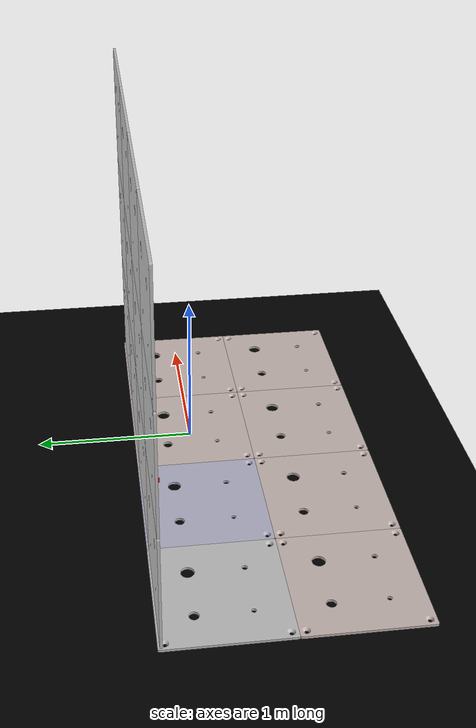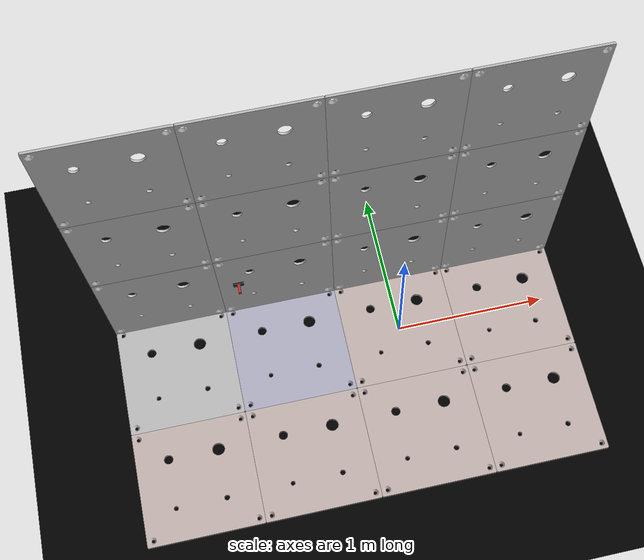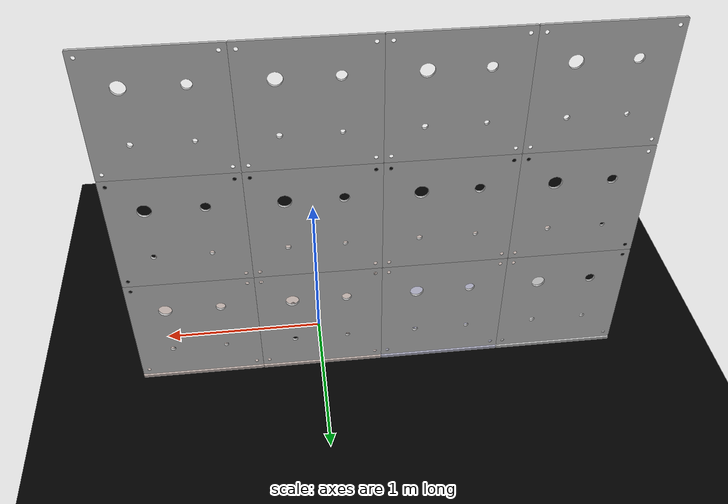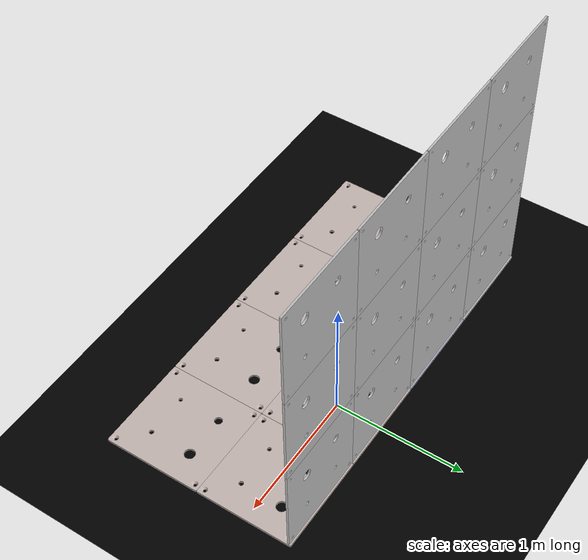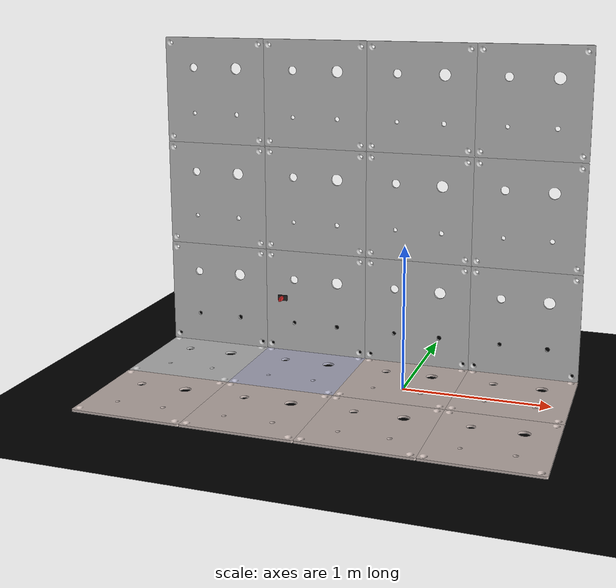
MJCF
<mujoco model="fusion_preview_all_parts">

  <compiler angle="degree" coordinate="local" meshdir="."/>
  <option gravity="0 0 -9.81" timestep="0.002"/>

  <visual>
    <headlight diffuse="0.8 0.8 0.8" ambient="0.3 0.3 0.3" specular="0.2 0.2 0.2"/>
    <rgba haze="0.15 0.25 0.35 1"/>
  </visual>

  <asset>
    <!--           MESHES          -->

    <!-- Comment out any mesh you do not want to load -->

    <mesh name="switch_tile_mesh"     file="..\meshes\Switch_tile.stl"    scale="0.005 0.005 0.005"/>
    <mesh name="led_tile_mesh"        file="..\meshes\LED_tile.stl"       scale="0.005 0.005 0.005"/>
    <mesh name="connector_tile_mesh"  file="..\meshes\Connector_tile.stl" scale="0.005 0.005 0.005"/>
    <mesh name="normal_tile_mesh"  file="..\meshes\tile.stl" scale="0.005 0.005 0.005"/>

    <!-- Note: this filename includes a space before .stl -->
    <mesh name="part_300mm_mesh"      file="..\meshes\300mm.stl"         scale="0.005 0.005 0.005"/>
    <mesh name="part_450mm_mesh"      file="..\meshes\450mm.stl"          scale="0.005 0.005 0.005"/>
    <mesh name="part_600mm_mesh"      file="..\meshes\600mm.stl"          scale="0.005 0.005 0.005"/>
  </asset>

  <default>
    <geom type="mesh"
          contype="0"
          conaffinity="0"
          rgba="0.72 0.72 0.72 1"/>

    <default class="switch_visual">
      <geom type="box" contype="1" conaffinity="1" friction="1 0.1 0.1"/>
    </default>
  </default>

  <worldbody>
    <!--      LIGHTS / FLOOR       -->

    <light name="top_light_1" pos="0 0 3"/>
    <light name="top_light_2" pos="2 0 3"/>
    <light name="top_light_3" pos="-2 0 3"/>

    <geom name="floor" type="plane" size="5 5 0.1" rgba="0 0 0 1"/>

    <!--         CAMERAS           -->

    <!-- Wide camera for all parts -->
    <camera name="overview" pos="0 2.8 1.6" xyaxes="1 0 0 0 0.5 1"/>

    <!-- Alternative side camera -->
    <camera name="side" pos="3 0 1.2" xyaxes="0 1 0 -0.3 0 1"/>

    <!--        MESH BODIES        -->

    <!--
      Each body is separated and placed side by side.
      You can comment out any whole body block whenever you want.
    -->

   <!-- Ground first tile series -->
    <body name="switch_tile_body" pos="-1.50 0 0.05">
      <geom name="switch_tile_geom" mesh="switch_tile_mesh" rgba="0.75 0.75 0.75 1"/>
    </body>

    <body name="led_tile_body" pos="-0.75 0 0.05">
      <geom name="led_tile_geom" mesh="switch_tile_mesh" rgba="0.70 0.70 0.78 1"/>
    </body>

    <body name="connector_tile_body" pos="0.00 0 0.05">
      <geom name="connector_tile_geom" mesh="switch_tile_mesh" rgba="0.78 0.72 0.70 1"/>
    </body>

    <body name="connector_tile_body2" pos="0.75 0 0.05">
      <geom name="connector_tile_geom2" mesh="switch_tile_mesh" rgba="0.78 0.72 0.70 1"/>
    </body>

  <!-- Ground second tile series -->
    <body name="connector_tile_body3" pos="-1.50 -0.75 0.05">
      <geom name="connector_tile_geom3" mesh="switch_tile_mesh" rgba="0.78 0.72 0.70 1"/>
    </body>

    <body name="connector_tile_body4" pos="-0.75 -0.75 0.05">
      <geom name="connector_tile_geom4" mesh="switch_tile_mesh" rgba="0.78 0.72 0.70 1"/>
    </body>

    <body name="connector_tile_body5" pos="0.00 -0.75 0.05">
      <geom name="connector_tile_geom5" mesh="switch_tile_mesh" rgba="0.78 0.72 0.70 1"/>
    </body>

    <body name="connector_tile_body6" pos="0.75 -0.75 0.05">
      <geom name="connector_tile_geom6" mesh="switch_tile_mesh" rgba="0.78 0.72 0.70 1"/>
    </body>

  <!-- Upper first tile series -->
    <body name="switch_tile_body2" pos="-1.50 0.35 0.43" euler="90 0 0">
      <geom name="switch_tile_geom2" mesh="switch_tile_mesh" rgba="0.75 0.75 0.75 1"/>
    </body>

    <body name="switch_tile_body3" pos="-0.75 0.35 0.43" euler="90 0 0">
      <geom name="switch_tile_geom3" mesh="switch_tile_mesh" rgba="0.75 0.75 0.75 1"/>
    </body>

    <body name="switch_tile_body4" pos="0 0.35 0.43" euler="90 0 0">
      <geom name="switch_tile_geom4" mesh="switch_tile_mesh" rgba="0.75 0.75 0.75 1"/>

      <!-- Simple toggle switch mounted on this panel -->
      <body name="panel_switch_mount" pos="-1 0.02 0.00">
        <geom name="panel_switch_base" class="switch_visual" size="0.035 0.02 0.008" pos="0 0 0" rgba="0.15 0.15 0.15 1"/>

        <body name="panel_switch_toggle" pos="0 0 0.008">
          <joint name="panel_switch_hinge" type="hinge" axis="1 0 0" range="-0.6 0.6" damping="0.4" frictionloss="0.05"/>
          <geom name="panel_switch_lever" class="switch_visual" type="box" size="0.008 0.012 0.03" pos="0 0 0.03" rgba="0.85 0.15 0.15 1"/>
        </body>
      </body>
    </body>

    <body name="switch_tile_body5" pos="0.75 0.35 0.43" euler="90 0 0">
      <geom name="switch_tile_geom5" mesh="switch_tile_mesh" rgba="0.75 0.75 0.75 1"/>
    </body>

  <!-- Upper second tile series -->
    <body name="switch_tile_body6" pos="-1.50 0.35 1.18" euler="90 0 0">
      <geom name="switch_tile_geom6" mesh="switch_tile_mesh" rgba="0.75 0.75 0.75 1"/>
    </body>

    <body name="switch_tile_body7" pos="-0.75 0.35 1.18" euler="90 0 0">
      <geom name="switch_tile_geom7" mesh="switch_tile_mesh" rgba="0.75 0.75 0.75 1"/>
    </body>

    <body name="switch_tile_body8" pos="0 0.35 1.18" euler="90 0 0">
      <geom name="switch_tile_geom8" mesh="switch_tile_mesh" rgba="0.75 0.75 0.75 1"/>
    </body>

    <body name="switch_tile_body9" pos="0.75 0.35 1.18" euler="90 0 0">
      <geom name="switch_tile_geom9" mesh="switch_tile_mesh" rgba="0.75 0.75 0.75 1"/>
    </body>

  <!-- Upper third tile series -->
    <body name="switch_tile_body10" pos="-1.50 0.35 1.93" euler="90 0 0">
      <geom name="switch_tile_geom10" mesh="switch_tile_mesh" rgba="0.75 0.75 0.75 1"/>
    </body>

    <body name="switch_tile_body11" pos="-0.75 0.35 1.93" euler="90 0 0">
      <geom name="switch_tile_geom11" mesh="switch_tile_mesh" rgba="0.75 0.75 0.75 1"/>
    </body>

    <body name="switch_tile_body12" pos="0 0.35 1.93" euler="90 0 0">
      <geom name="switch_tile_geom12" mesh="switch_tile_mesh" rgba="0.75 0.75 0.75 1"/>
    </body>

    <body name="switch_tile_body13" pos="0.75 0.35 1.93" euler="90 0 0">
      <geom name="switch_tile_geom13" mesh="switch_tile_mesh" rgba="0.75 0.75 0.75 1"/>
    </body>
  </worldbody>

  <actuator>
    <position name="panel_switch_act" joint="panel_switch_hinge" kp="15" ctrlrange="-0.6 0.6"/>
  </actuator>

  <sensor>
    <jointpos name="panel_switch_pos" joint="panel_switch_hinge"/>
    <jointvel name="panel_switch_vel" joint="panel_switch_hinge"/>
  </sensor>
</mujoco>
